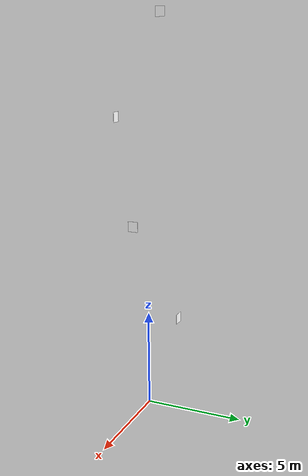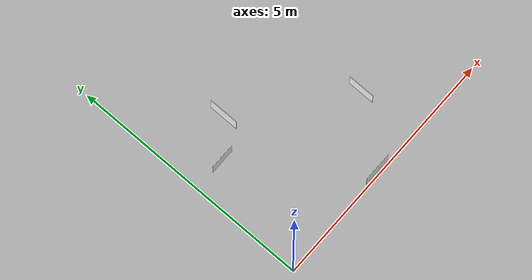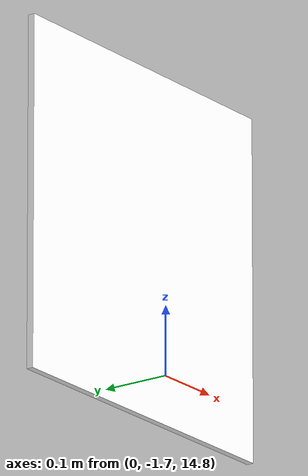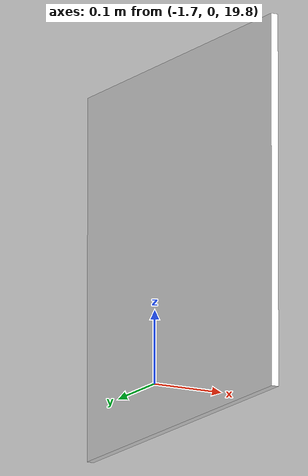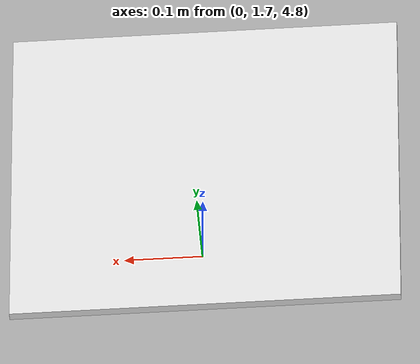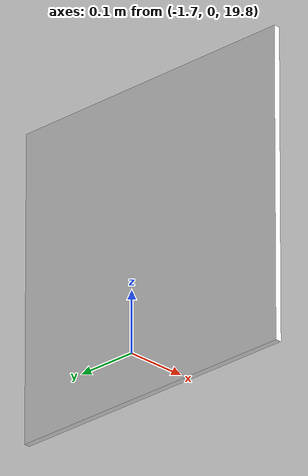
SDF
<?xml version='1.0'?>
<sdf version="1.9">
  <model name="defect_marker">
    <static>true</static>

    <!-- North face marker, box rotated so its flat face points north -->
    <link name="marker_0">
      <pose>0.0 1.66 5.0 -1.5708 0 0</pose>
      <visual name="marker_0_visual">
        <geometry>
          <box><size>0.5 0.5 0.01</size></box>
        </geometry>
        <material>
          <ambient>1 1 1 1</ambient>
          <diffuse>1 1 1 1</diffuse>
          <pbr>
            <metal>
              <albedo_map>marker_0.png</albedo_map>
              <roughness>1.0</roughness>
              <metalness>0.0</metalness>
            </metal>
          </pbr>
        </material>
      </visual>
    </link>

    <!-- East face marker, box rotated so its flat face points east -->
    <link name="marker_1">
      <pose>1.66 0.0 10.0 0 1.5708 0</pose>
      <visual name="marker_1_visual">
        <geometry>
          <box><size>0.5 0.5 0.01</size></box>
        </geometry>
        <material>
          <ambient>1 1 1 1</ambient>
          <diffuse>1 1 1 1</diffuse>
          <pbr>
            <metal>
              <albedo_map>marker_1.png</albedo_map>
              <roughness>1.0</roughness>
              <metalness>0.0</metalness>
            </metal>
          </pbr>
        </material>
      </visual>
    </link>

    <!-- South face marker, box rotated so its flat face points south -->
    <link name="marker_2">
      <pose>0.0 -1.66 15.0 1.5708 0 0</pose>
      <visual name="marker_2_visual">
        <geometry>
          <box><size>0.5 0.5 0.01</size></box>
        </geometry>
        <material>
          <ambient>1 1 1 1</ambient>
          <diffuse>1 1 1 1</diffuse>
          <pbr>
            <metal>
              <albedo_map>marker_2.png</albedo_map>
              <roughness>1.0</roughness>
              <metalness>0.0</metalness>
            </metal>
          </pbr>
        </material>
      </visual>
    </link>

    <!-- West face marker, box rotated so its flat face points west -->
    <link name="marker_3">
      <pose>-1.66 0.0 20.0 0 -1.5708 0</pose>
      <visual name="marker_3_visual">
        <geometry>
          <box><size>0.5 0.5 0.01</size></box>
        </geometry>
        <material>
          <ambient>1 1 1 1</ambient>
          <diffuse>1 1 1 1</diffuse>
          <pbr>
            <metal>
              <albedo_map>marker_3.png</albedo_map>
              <roughness>1.0</roughness>
              <metalness>0.0</metalness>
            </metal>
          </pbr>
        </material>
      </visual>
    </link>
  </model>
</sdf>
